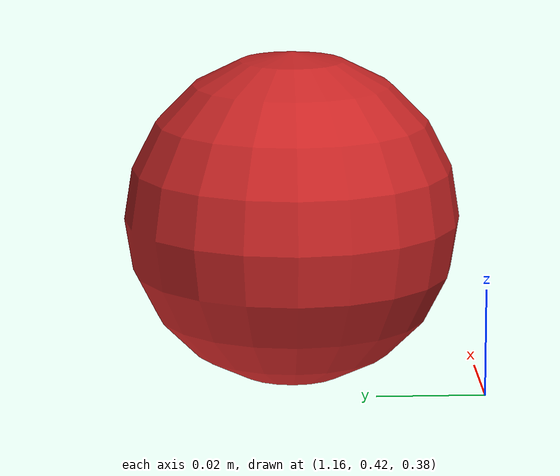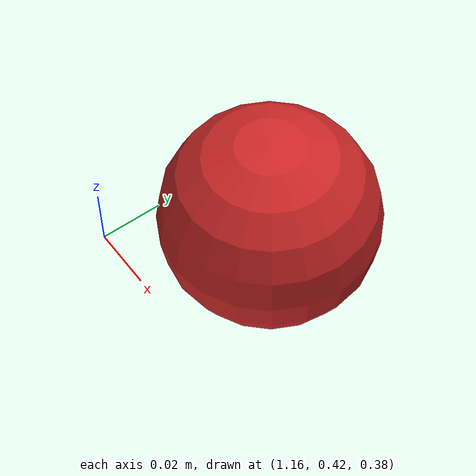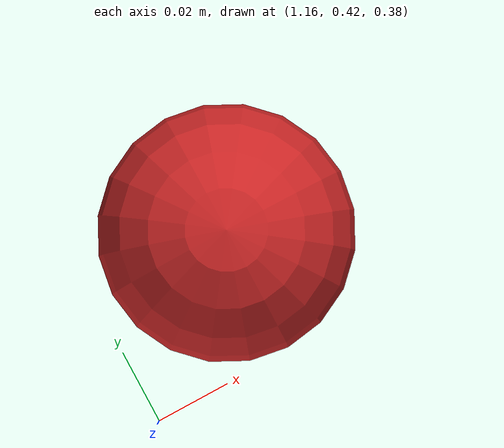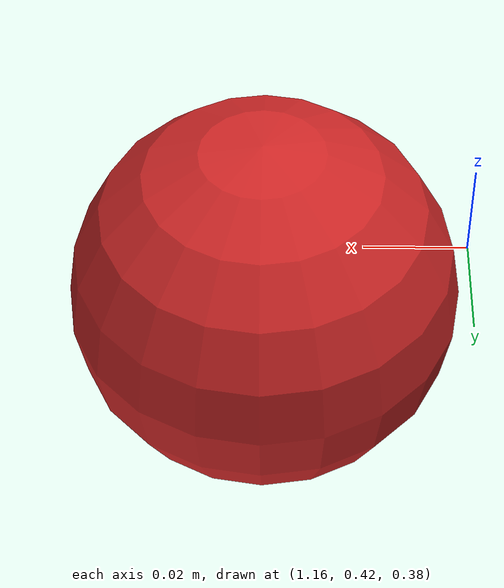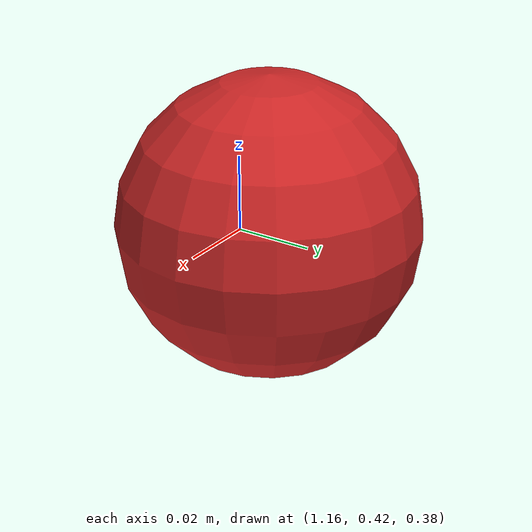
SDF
<sdf version="1.6">
 <world name="default">
  <light name="sun" type="directional">
   <pose>0 0 10 0 -0 0</pose>
   <diffuse>0.8 0.8 0.8 1</diffuse>
   <specular>0.1 0.1 0.1 1</specular>
   <attenuation>
    <range>1000</range>
    <constant>0.9</constant>
    <linear>0.01</linear>
    <quadratic>0.001</quadratic>
   </attenuation>
   <direction>-0.5 0.5 -1</direction>
  </light>
  <model name="ground_plane">
   <static>1</static>
   <link name="link">
    <collision name="collision">
     <geometry><plane><normal>0 0 1</normal><size>100 100</size></plane></geometry>
     <surface><friction><ode><mu>100</mu><mu2>50</mu2></ode></friction></surface>
    </collision>
    <visual name="visual">
     <cast_shadows>0</cast_shadows>
     <geometry><plane><normal>0 0 1</normal><size>100 100</size></plane></geometry>
     <material>
      <script><uri>file://media/materials/scripts/gazebo.material</uri><name>Gazebo/Grey</name></script>
     </material>
    </visual>
   </link>
  </model>
  <physics name="default_physics" default="0" type="ode">
   <max_step_size>0.01</max_step_size>
   <real_time_factor>1</real_time_factor>
   <real_time_update_rate>100</real_time_update_rate>
  </physics>
  <gravity>0 0 -9.8</gravity>
  <magnetic_field>6e-06 2.3e-05 -4.2e-05</magnetic_field>
  <atmosphere type="adiabatic"/>
  <scene><ambient>0.4 0.4 0.4 1</ambient><background>0.7 0.7 0.7 1</background><shadows>1</shadows></scene>
  <spherical_coordinates>
   <surface_model>EARTH_WGS84</surface_model>
   <latitude_deg>0</latitude_deg>
   <longitude_deg>0</longitude_deg>
   <elevation>0</elevation>
   <heading_deg>0</heading_deg>
  </spherical_coordinates>
  <model name="RoboCup_SPL_Ball_0_0">
   <link name="ball">
    <inertial>
     <inertia><ixx>1</ixx><ixy>0</ixy><ixz>0</ixz><iyy>1</iyy><iyz>0</iyz><izz>1</izz></inertia>
     <mass>1</mass>
    </inertial>
    <visual name="visual">
     <geometry><sphere><radius>0.0325</radius></sphere></geometry>
     <material>
      <script><uri>file://media/materials/scripts/gazebo.material</uri><name>Gazebo/RedBright</name></script>
      <ambient>0.87 0.26 0.07 1</ambient>
      <diffuse>0.87 0.26 0.07 1</diffuse>
      <specular>0.87 0.26 0.07 1</specular>
      <emissive>0 0 0 1</emissive>
     </material>
    </visual>
   </link>
   <static>1</static>
   <allow_auto_disable>0</allow_auto_disable>
   <pose>1.19818 0.454096 0.404925 0 -0 0</pose>
  </model>
 </world>
</sdf>
